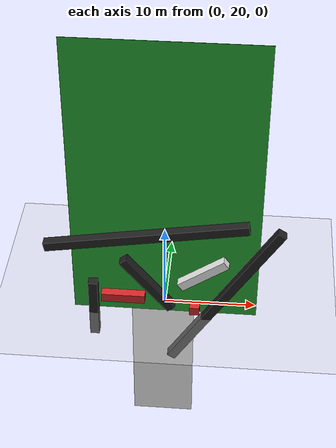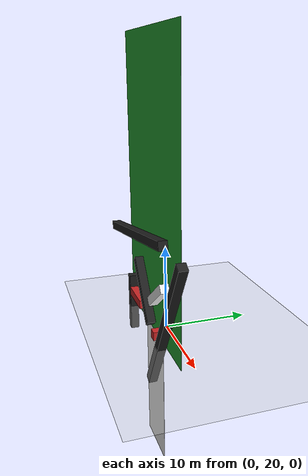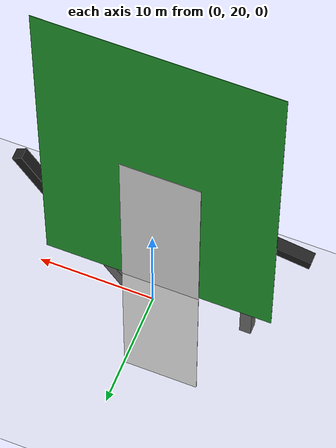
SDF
<sdf version="1.7">
 <world name="default">
  <light name="sun" type="directional">
   <cast_shadows>0</cast_shadows>
   <pose>0 0 10 0 -0 0</pose>
   <diffuse>0.8 0.8 0.8 1</diffuse>
   <specular>0.2 0.2 0.2 1</specular>
   <attenuation>
    <range>1000</range>
    <constant>0.9</constant>
    <linear>0.01</linear>
    <quadratic>0.001</quadratic>
   </attenuation>
   <direction>-0.5 0.1 -0.9</direction>
   <spot><inner_angle>0</inner_angle><outer_angle>0</outer_angle><falloff>0</falloff></spot>
  </light>
  <model name="ground_plane">
   <static>1</static>
   <link name="link">
    <collision name="collision">
     <geometry><plane><normal>0 0 1</normal><size>100 100</size></plane></geometry>
     <surface>
      <contact><collide_bitmask>65535</collide_bitmask></contact>
      <friction><ode><mu>100</mu><mu2>50</mu2></ode></friction>
     </surface>
    </collision>
    <visual name="visual">
     <cast_shadows>0</cast_shadows>
     <geometry><plane><normal>0 0 1</normal><size>100 100</size></plane></geometry>
     <material>
      <script><uri>file://media/materials/scripts/gazebo.material</uri><name>Gazebo/Grey</name></script>
     </material>
    </visual>
   </link>
  </model>
  <gravity>0 0 -9.8</gravity>
  <magnetic_field>6e-06 2.3e-05 -4.2e-05</magnetic_field>
  <atmosphere type="adiabatic"/>
  <physics type="ode">
   <max_step_size>0.001</max_step_size>
   <real_time_factor>1</real_time_factor>
   <real_time_update_rate>1000</real_time_update_rate>
  </physics>
  <scene><ambient>0.4 0.4 0.4 1</ambient><background>0.7 0.7 0.7 1</background><shadows>0</shadows></scene>
  <spherical_coordinates>
   <surface_model>EARTH_WGS84</surface_model>
   <latitude_deg>0</latitude_deg>
   <longitude_deg>0</longitude_deg>
   <elevation>0</elevation>
   <heading_deg>0</heading_deg>
  </spherical_coordinates>
  <light name="user_directional_light_0" type="directional">
   <pose>-0.169991 0.23952 1 0 -0 0</pose>
   <diffuse>0.5 0.5 0.5 1</diffuse>
   <specular>0.1 0.1 0.1 1</specular>
   <direction>0.1 0.1 -0.9</direction>
   <attenuation>
    <range>20</range>
    <constant>0.5</constant>
    <linear>0.01</linear>
    <quadratic>0.001</quadratic>
   </attenuation>
   <spot><inner_angle>0</inner_angle><outer_angle>0</outer_angle><falloff>0</falloff></spot>
  </light>
  <model name="Untitled23">
   <link name="link_2">
    <inertial>
     <mass>20.383</mass>
     <inertia><ixx>1883.11</ixx><ixy>0</ixy><ixz>0</ixz><iyy>2554.49</iyy><iyz>0</iyz><izz>671.385</izz></inertia>
    </inertial>
    <visual name="visual">
     <geometry><box><size>6.78668 0.030727 33.2961</size></box></geometry>
     <material>
      <lighting>1</lighting>
      <script><uri>file://media/materials/scripts/gazebo.material</uri><name>Gazebo/White</name></script>
      <shader type="pixel"><normal_map>__default__</normal_map></shader>
      <ambient>1 1 1 1</ambient>
      <diffuse>1 1 1 1</diffuse>
      <specular>1 1 1 1</specular>
      <emissive>1 1 1 1</emissive>
     </material>
     <cast_shadows>0</cast_shadows>
    </visual>
    <collision name="collision">
     <geometry><box><size>6.78668 0.030727 33.2961</size></box></geometry>
     <surface>
      <friction>
       <ode><mu>1</mu><mu2>1</mu2><fdir1>0 0 0</fdir1><slip1>0</slip1><slip2>0</slip2></ode>
       <torsional>
        <coefficient>1</coefficient>
        <patch_radius>0</patch_radius>
        <surface_radius>0</surface_radius>
        <use_patch_radius>1</use_patch_radius>
        <ode><slip>0</slip></ode>
       </torsional>
      </friction>
      <bounce><restitution_coefficient>0</restitution_coefficient><threshold>1e+06</threshold></bounce>
      <contact>
       <collide_without_contact>0</collide_without_contact>
       <collide_without_contact_bitmask>1</collide_without_contact_bitmask>
       <collide_bitmask>1</collide_bitmask>
       <ode>
        <soft_cfm>0</soft_cfm>
        <soft_erp>0.2</soft_erp>
        <kp>1e+13</kp>
        <kd>1</kd>
        <max_vel>0.01</max_vel>
        <min_depth>0</min_depth>
       </ode>
       <bullet>
        <split_impulse>1</split_impulse>
        <split_impulse_penetration_threshold>-0.01</split_impulse_penetration_threshold>
        <soft_cfm>0</soft_cfm>
        <soft_erp>0.2</soft_erp>
        <kp>1e+13</kp>
        <kd>1</kd>
       </bullet>
      </contact>
     </surface>
    </collision>
   </link>
   <static>1</static>
   <pose>-0.103476 18.6248 0.5 0 -0 0</pose>
  </model>
  <model name="Untitled_0_clone_0_clone_clone">
   <link name="link_0">
    <inertial>
     <mass>1</mass>
     <inertia>
      <ixx>0.166667</ixx>
      <ixy>0</ixy>
      <ixz>0</ixz>
      <iyy>0.166667</iyy>
      <iyz>0</iyz>
      <izz>0.166667</izz>
     </inertia>
    </inertial>
    <gravity>0</gravity>
    <visual name="visual">
     <geometry><box><size>1 1 21.4855</size></box></geometry>
     <material>
      <lighting>1</lighting>
      <script><uri>file://media/materials/scripts/gazebo.material</uri><name>Gazebo/Black</name></script>
      <shader type="pixel"><normal_map>__default__</normal_map></shader>
      <ambient>0 0 0 1</ambient>
      <diffuse>0 0 0 1</diffuse>
      <specular>0.1 0.1 0.1 1</specular>
      <emissive>0 0 0 1</emissive>
     </material>
     <cast_shadows>0</cast_shadows>
    </visual>
    <collision name="collision">
     <geometry><box><size>1 1 21.4855</size></box></geometry>
     <surface>
      <friction>
       <ode><mu>1</mu><mu2>1</mu2><fdir1>0 0 0</fdir1><slip1>0</slip1><slip2>0</slip2></ode>
       <torsional>
        <coefficient>1</coefficient>
        <patch_radius>0</patch_radius>
        <surface_radius>0</surface_radius>
        <use_patch_radius>1</use_patch_radius>
        <ode><slip>0</slip></ode>
       </torsional>
      </friction>
      <bounce><restitution_coefficient>0</restitution_coefficient><threshold>1e+06</threshold></bounce>
      <contact>
       <collide_without_contact>0</collide_without_contact>
       <collide_without_contact_bitmask>1</collide_without_contact_bitmask>
       <collide_bitmask>1</collide_bitmask>
       <ode>
        <soft_cfm>0</soft_cfm>
        <soft_erp>0.2</soft_erp>
        <kp>1e+13</kp>
        <kd>1</kd>
        <max_vel>0.01</max_vel>
        <min_depth>0</min_depth>
       </ode>
       <bullet>
        <split_impulse>1</split_impulse>
        <split_impulse_penetration_threshold>-0.01</split_impulse_penetration_threshold>
        <soft_cfm>0</soft_cfm>
        <soft_erp>0.2</soft_erp>
        <kp>1e+13</kp>
        <kd>1</kd>
       </bullet>
      </contact>
     </surface>
    </collision>
   </link>
   <static>1</static>
   <pose>6.56483 17.8523 3.01458 0 0.553995 0</pose>
  </model>
  <model name="Untitled_0_clone_0_clone111">
   <link name="link_0">
    <inertial>
     <mass>1</mass>
     <inertia>
      <ixx>0.166667</ixx>
      <ixy>0</ixy>
      <ixz>0</ixz>
      <iyy>0.166667</iyy>
      <iyz>0</iyz>
      <izz>0.166667</izz>
     </inertia>
    </inertial>
    <visual name="visual">
     <geometry><box><size>1 1 8.20534</size></box></geometry>
     <material>
      <lighting>1</lighting>
      <script><uri>file://media/materials/scripts/gazebo.material</uri><name>Gazebo/Black</name></script>
      <shader type="pixel"><normal_map>__default__</normal_map></shader>
      <ambient>0 1 1 1</ambient>
      <diffuse>0 0 0 1</diffuse>
      <specular>0.1 0.1 0.1 1</specular>
      <emissive>0 0 0 1</emissive>
     </material>
     <cast_shadows>0</cast_shadows>
    </visual>
    <collision name="collision">
     <geometry><box><size>1 1 8.20534</size></box></geometry>
     <surface>
      <friction>
       <ode><mu>1</mu><mu2>1</mu2><fdir1>0 0 0</fdir1><slip1>0</slip1><slip2>0</slip2></ode>
       <torsional>
        <coefficient>1</coefficient>
        <patch_radius>0</patch_radius>
        <surface_radius>0</surface_radius>
        <use_patch_radius>1</use_patch_radius>
        <ode><slip>0</slip></ode>
       </torsional>
      </friction>
      <bounce><restitution_coefficient>0</restitution_coefficient><threshold>1e+06</threshold></bounce>
      <contact>
       <collide_without_contact>0</collide_without_contact>
       <collide_without_contact_bitmask>1</collide_without_contact_bitmask>
       <collide_bitmask>1</collide_bitmask>
       <ode>
        <soft_cfm>0</soft_cfm>
        <soft_erp>0.2</soft_erp>
        <kp>1e+13</kp>
        <kd>1</kd>
        <max_vel>0.01</max_vel>
        <min_depth>0</min_depth>
       </ode>
       <bullet>
        <split_impulse>1</split_impulse>
        <split_impulse_penetration_threshold>-0.01</split_impulse_penetration_threshold>
        <soft_cfm>0</soft_cfm>
        <soft_erp>0.2</soft_erp>
        <kp>1e+13</kp>
        <kd>1</kd>
       </bullet>
      </contact>
     </surface>
    </collision>
   </link>
   <static>1</static>
   <pose>-1.67139 17.8806 4.34718 0 -0.678952 0</pose>
  </model>
  <model name="Untitled_0_clone_0_clone_clone_clone_0_clone11">
   <link name="link_0">
    <inertial>
     <mass>1</mass>
     <inertia>
      <ixx>0.166667</ixx>
      <ixy>0</ixy>
      <ixz>0</ixz>
      <iyy>0.166667</iyy>
      <iyz>0</iyz>
      <izz>0.166667</izz>
     </inertia>
    </inertial>
    <visual name="visual">
     <geometry><box><size>0.999994 1 5.95018</size></box></geometry>
     <material>
      <lighting>1</lighting>
      <script><uri>file://media/materials/scripts/gazebo.material</uri><name>Gazebo/White</name></script>
      <shader type="pixel"><normal_map>__default__</normal_map></shader>
      <ambient>1 1 0 1</ambient>
      <diffuse>0 1 0 1</diffuse>
      <specular>0 1 1 1</specular>
      <emissive>1 0 0 1</emissive>
     </material>
     <cast_shadows>0</cast_shadows>
    </visual>
    <collision name="collision">
     <geometry><box><size>0.999994 1 5.95018</size></box></geometry>
     <surface>
      <friction>
       <ode><mu>1</mu><mu2>1</mu2><fdir1>0 0 0</fdir1><slip1>0</slip1><slip2>0</slip2></ode>
       <torsional>
        <coefficient>1</coefficient>
        <patch_radius>0</patch_radius>
        <surface_radius>0</surface_radius>
        <use_patch_radius>1</use_patch_radius>
        <ode><slip>0</slip></ode>
       </torsional>
      </friction>
      <bounce><restitution_coefficient>0</restitution_coefficient><threshold>1e+06</threshold></bounce>
      <contact>
       <collide_without_contact>0</collide_without_contact>
       <collide_without_contact_bitmask>1</collide_without_contact_bitmask>
       <collide_bitmask>1</collide_bitmask>
       <ode>
        <soft_cfm>0</soft_cfm>
        <soft_erp>0.2</soft_erp>
        <kp>1e+13</kp>
        <kd>1</kd>
        <max_vel>0.01</max_vel>
        <min_depth>0</min_depth>
       </ode>
       <bullet>
        <split_impulse>1</split_impulse>
        <split_impulse_penetration_threshold>-0.01</split_impulse_penetration_threshold>
        <soft_cfm>0</soft_cfm>
        <soft_erp>0.2</soft_erp>
        <kp>1e+13</kp>
        <kd>1</kd>
       </bullet>
      </contact>
     </surface>
    </collision>
   </link>
   <static>1</static>
   <pose>4.2419 17.8393 6.09937 3.14159 -0.952674 3.14159</pose>
  </model>
  <model name="Untitled_0_clone_0_clone_clone_clone_0_clone_0`11">
   <link name="link_0">
    <inertial>
     <mass>1</mass>
     <inertia>
      <ixx>0.166667</ixx>
      <ixy>0</ixy>
      <ixz>0</ixz>
      <iyy>0.166667</iyy>
      <iyz>0</iyz>
      <izz>0.166667</izz>
     </inertia>
    </inertial>
    <visual name="visual">
     <geometry><box><size>1 1 1.07706</size></box></geometry>
     <material>
      <lighting>1</lighting>
      <script><uri>file://media/materials/scripts/gazebo.material</uri><name>Gazebo/Red</name></script>
      <shader type="pixel"><normal_map>__default__</normal_map></shader>
      <ambient>0 1 1 1</ambient>
      <diffuse>0 0 1 1</diffuse>
      <specular>0 1 1 1</specular>
      <emissive>1 0 1 1</emissive>
     </material>
     <cast_shadows>0</cast_shadows>
    </visual>
    <collision name="collision">
     <geometry><box><size>1 1 1.07706</size></box></geometry>
     <surface>
      <friction>
       <ode><mu>1</mu><mu2>1</mu2><fdir1>0 0 0</fdir1><slip1>0</slip1><slip2>0</slip2></ode>
       <torsional>
        <coefficient>1</coefficient>
        <patch_radius>0</patch_radius>
        <surface_radius>0</surface_radius>
        <use_patch_radius>1</use_patch_radius>
        <ode><slip>0</slip></ode>
       </torsional>
      </friction>
      <bounce><restitution_coefficient>0</restitution_coefficient><threshold>1e+06</threshold></bounce>
      <contact>
       <collide_without_contact>0</collide_without_contact>
       <collide_without_contact_bitmask>1</collide_without_contact_bitmask>
       <collide_bitmask>1</collide_bitmask>
       <ode>
        <soft_cfm>0</soft_cfm>
        <soft_erp>0.2</soft_erp>
        <kp>1e+13</kp>
        <kd>1</kd>
        <max_vel>0.01</max_vel>
        <min_depth>0</min_depth>
       </ode>
       <bullet>
        <split_impulse>1</split_impulse>
        <split_impulse_penetration_threshold>-0.01</split_impulse_penetration_threshold>
        <soft_cfm>0</soft_cfm>
        <soft_erp>0.2</soft_erp>
        <kp>1e+13</kp>
        <kd>1</kd>
       </bullet>
      </contact>
     </surface>
    </collision>
   </link>
   <static>1</static>
   <pose>3.40922 17.8257 1.03909 0 -1.57042 0</pose>
  </model>
  <model name="Untitled_0_clone_0_clone_clone_clone_011">
   <link name="link_0">
    <inertial>
     <mass>1</mass>
     <inertia>
      <ixx>0.166667</ixx>
      <ixy>0</ixy>
      <ixz>0</ixz>
      <iyy>0.166667</iyy>
      <iyz>0</iyz>
      <izz>0.166667</izz>
     </inertia>
    </inertial>
    <visual name="visual">
     <geometry><box><size>1 1 4.70672</size></box></geometry>
     <material>
      <lighting>1</lighting>
      <script><uri>file://media/materials/scripts/gazebo.material</uri><name>Gazebo/Red</name></script>
      <shader type="pixel"><normal_map>__default__</normal_map></shader>
      <ambient>0 0 0 1</ambient>
      <diffuse>1 0 0 1</diffuse>
      <specular>1 0 0 1</specular>
      <emissive>1 0 0 1</emissive>
     </material>
     <cast_shadows>0</cast_shadows>
    </visual>
    <collision name="collision">
     <geometry><box><size>1 1 4.70672</size></box></geometry>
     <surface>
      <friction>
       <ode><mu>1</mu><mu2>1</mu2><fdir1>0 0 0</fdir1><slip1>0</slip1><slip2>0</slip2></ode>
       <torsional>
        <coefficient>1</coefficient>
        <patch_radius>0</patch_radius>
        <surface_radius>0</surface_radius>
        <use_patch_radius>1</use_patch_radius>
        <ode><slip>0</slip></ode>
       </torsional>
      </friction>
      <bounce><restitution_coefficient>0</restitution_coefficient><threshold>1e+06</threshold></bounce>
      <contact>
       <collide_without_contact>0</collide_without_contact>
       <collide_without_contact_bitmask>1</collide_without_contact_bitmask>
       <collide_bitmask>1</collide_bitmask>
       <ode>
        <soft_cfm>0</soft_cfm>
        <soft_erp>0.2</soft_erp>
        <kp>1e+13</kp>
        <kd>1</kd>
        <max_vel>0.01</max_vel>
        <min_depth>0</min_depth>
       </ode>
       <bullet>
        <split_impulse>1</split_impulse>
        <split_impulse_penetration_threshold>-0.01</split_impulse_penetration_threshold>
        <soft_cfm>0</soft_cfm>
        <soft_erp>0.2</soft_erp>
        <kp>1e+13</kp>
        <kd>1</kd>
       </bullet>
      </contact>
     </surface>
    </collision>
   </link>
   <static>1</static>
   <pose>-4.33256 17.8348 2.34243 0 -1.57042 0</pose>
  </model>
  <model name="Untitled21">
   <link name="link_2">
    <inertial>
     <mass>20.383</mass>
     <inertia><ixx>1883.11</ixx><ixy>0</ixy><ixz>0</ixz><iyy>2554.49</iyy><iyz>0</iyz><izz>671.385</izz></inertia>
    </inertial>
    <visual name="visual">
     <geometry><box><size>19.8811 0.030727 33.2961</size></box></geometry>
     <material>
      <lighting>1</lighting>
      <script><uri>file://media/materials/scripts/gazebo.material</uri><name>Gazebo/Green</name></script>
      <shader type="pixel"><normal_map>__default__</normal_map></shader>
      <ambient>0 1 0 1</ambient>
      <diffuse>1 1 1 1</diffuse>
      <specular>0 0 0 1</specular>
      <emissive>0 0 0 1</emissive>
     </material>
    </visual>
    <collision name="collision">
     <geometry><box><size>19.8811 0.030727 33.2961</size></box></geometry>
     <surface>
      <friction>
       <ode><mu>1</mu><mu2>1</mu2><fdir1>0 0 0</fdir1><slip1>0</slip1><slip2>0</slip2></ode>
       <torsional>
        <coefficient>1</coefficient>
        <patch_radius>0</patch_radius>
        <surface_radius>0</surface_radius>
        <use_patch_radius>1</use_patch_radius>
        <ode><slip>0</slip></ode>
       </torsional>
      </friction>
      <bounce><restitution_coefficient>0</restitution_coefficient><threshold>1e+06</threshold></bounce>
      <contact>
       <collide_without_contact>0</collide_without_contact>
       <collide_without_contact_bitmask>1</collide_without_contact_bitmask>
       <collide_bitmask>1</collide_bitmask>
       <ode>
        <soft_cfm>0</soft_cfm>
        <soft_erp>0.2</soft_erp>
        <kp>1e+13</kp>
        <kd>1</kd>
        <max_vel>0.01</max_vel>
        <min_depth>0</min_depth>
       </ode>
       <bullet>
        <split_impulse>1</split_impulse>
        <split_impulse_penetration_threshold>-0.01</split_impulse_penetration_threshold>
        <soft_cfm>0</soft_cfm>
        <soft_erp>0.2</soft_erp>
        <kp>1e+13</kp>
        <kd>1</kd>
       </bullet>
      </contact>
     </surface>
    </collision>
   </link>
   <static>0</static>
   <pose>0.138803 18.4874 16.648 -4.8e-05 -0 -0</pose>
  </model>
  <model name="Untitled_0111">
   <link name="link_0">
    <inertial>
     <mass>1</mass>
     <inertia>
      <ixx>0.166667</ixx>
      <ixy>0</ixy>
      <ixz>0</ixz>
      <iyy>0.166667</iyy>
      <iyz>0</iyz>
      <izz>0.166667</izz>
     </inertia>
    </inertial>
    <visual name="visual">
     <geometry><box><size>1 1 7.33322</size></box></geometry>
     <material>
      <lighting>1</lighting>
      <script><uri>file://media/materials/scripts/gazebo.material</uri><name>Gazebo/Black</name></script>
      <shader type="pixel"><normal_map>__default__</normal_map></shader>
      <ambient>1 1 0 1</ambient>
      <diffuse>1 0 0 1</diffuse>
      <specular>1 0.1 0.1 1</specular>
      <emissive>0 0 0 1</emissive>
     </material>
     <cast_shadows>0</cast_shadows>
    </visual>
    <collision name="collision">
     <geometry><box><size>1 1 7.33322</size></box></geometry>
     <surface>
      <friction>
       <ode><mu>1</mu><mu2>1</mu2><fdir1>0 0 0</fdir1><slip1>0</slip1><slip2>0</slip2></ode>
       <torsional>
        <coefficient>1</coefficient>
        <patch_radius>0</patch_radius>
        <surface_radius>0</surface_radius>
        <use_patch_radius>1</use_patch_radius>
        <ode><slip>0</slip></ode>
       </torsional>
      </friction>
      <bounce><restitution_coefficient>0</restitution_coefficient><threshold>1e+06</threshold></bounce>
      <contact>
       <collide_without_contact>0</collide_without_contact>
       <collide_without_contact_bitmask>1</collide_without_contact_bitmask>
       <collide_bitmask>1</collide_bitmask>
       <ode>
        <soft_cfm>0</soft_cfm>
        <soft_erp>0.2</soft_erp>
        <kp>1e+13</kp>
        <kd>1</kd>
        <max_vel>0.01</max_vel>
        <min_depth>0</min_depth>
       </ode>
       <bullet>
        <split_impulse>1</split_impulse>
        <split_impulse_penetration_threshold>-0.01</split_impulse_penetration_threshold>
        <soft_cfm>0</soft_cfm>
        <soft_erp>0.2</soft_erp>
        <kp>1e+13</kp>
        <kd>1</kd>
       </bullet>
      </contact>
     </surface>
    </collision>
   </link>
   <static>1</static>
   <pose>-7.59203 17.9443 0.5 0 -0 0</pose>
  </model>
  <model name="Untitled_0_clone_0_clone_clone_clone">
   <link name="link_0">
    <inertial>
     <mass>1</mass>
     <inertia>
      <ixx>0.166667</ixx>
      <ixy>0</ixy>
      <ixz>0</ixz>
      <iyy>0.166667</iyy>
      <iyz>0</iyz>
      <izz>0.166667</izz>
     </inertia>
    </inertial>
    <gravity>0</gravity>
    <visual name="visual">
     <geometry><box><size>1 1 21.4855</size></box></geometry>
     <material>
      <lighting>1</lighting>
      <script><uri>file://media/materials/scripts/gazebo.material</uri><name>Gazebo/Black</name></script>
      <shader type="pixel"><normal_map>__default__</normal_map></shader>
      <ambient>0 0 0 1</ambient>
      <diffuse>0 0 0 1</diffuse>
      <specular>0.1 0.1 0.1 1</specular>
      <emissive>0 0 0 1</emissive>
     </material>
     <cast_shadows>0</cast_shadows>
    </visual>
    <collision name="collision">
     <geometry><box><size>1 1 21.4855</size></box></geometry>
     <surface>
      <friction>
       <ode><mu>1</mu><mu2>1</mu2><fdir1>0 0 0</fdir1><slip1>0</slip1><slip2>0</slip2></ode>
       <torsional>
        <coefficient>1</coefficient>
        <patch_radius>0</patch_radius>
        <surface_radius>0</surface_radius>
        <use_patch_radius>1</use_patch_radius>
        <ode><slip>0</slip></ode>
       </torsional>
      </friction>
      <bounce><restitution_coefficient>0</restitution_coefficient><threshold>1e+06</threshold></bounce>
      <contact>
       <collide_without_contact>0</collide_without_contact>
       <collide_without_contact_bitmask>1</collide_without_contact_bitmask>
       <collide_bitmask>1</collide_bitmask>
       <ode>
        <soft_cfm>0</soft_cfm>
        <soft_erp>0.2</soft_erp>
        <kp>1e+13</kp>
        <kd>1</kd>
        <max_vel>0.01</max_vel>
        <min_depth>0</min_depth>
       </ode>
       <bullet>
        <split_impulse>1</split_impulse>
        <split_impulse_penetration_threshold>-0.01</split_impulse_penetration_threshold>
        <soft_cfm>0</soft_cfm>
        <soft_erp>0.2</soft_erp>
        <kp>1e+13</kp>
        <kd>1</kd>
       </bullet>
      </contact>
     </surface>
    </collision>
   </link>
   <static>1</static>
   <pose>-1.75969 17.0641 11.4324 0 1.40405 0</pose>
  </model>
 </world>
</sdf>
